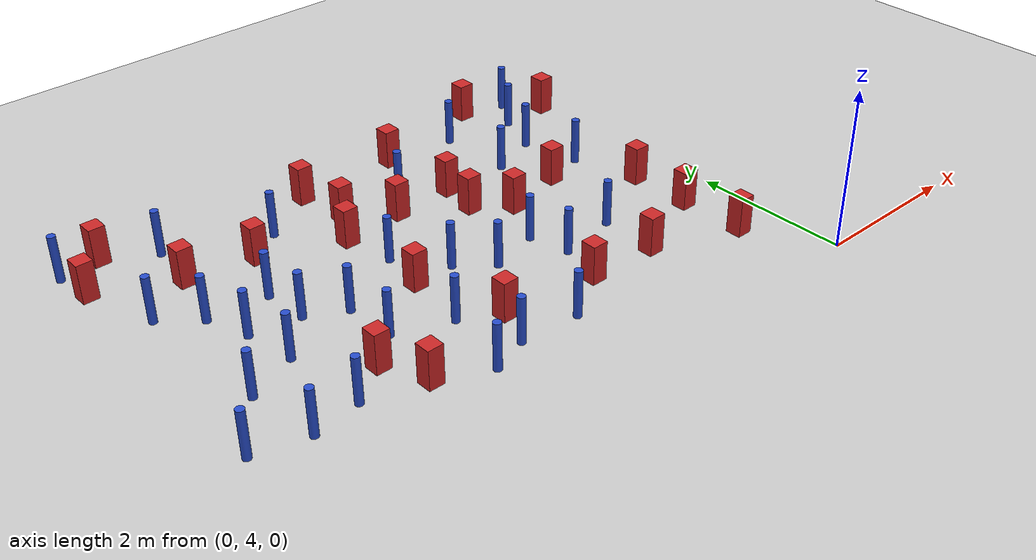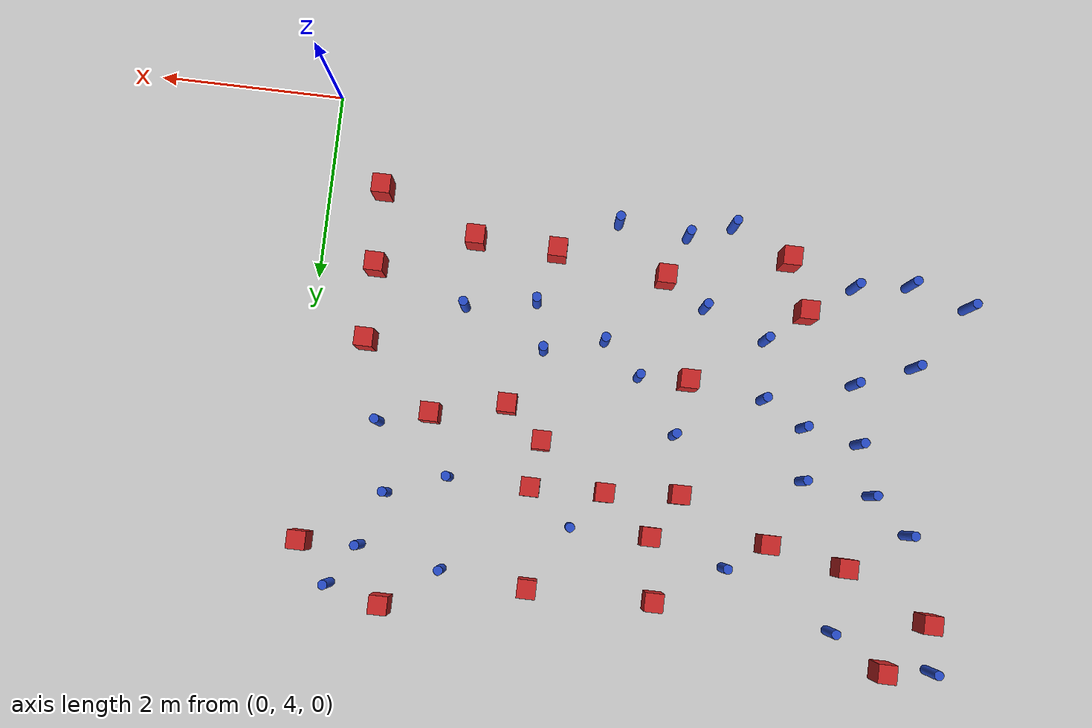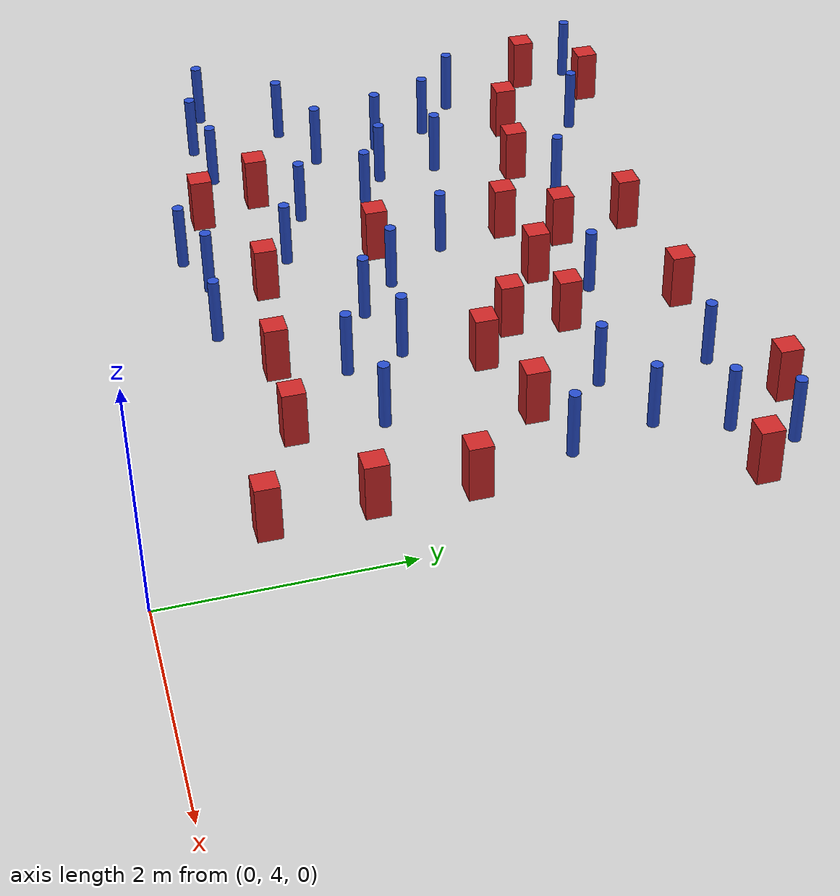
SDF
<sdf version="1.6">
 <world name="default">
  <model name="ground_plane">
   <static>1</static>
   <link name="link">
    <collision name="collision">
     <geometry><plane><normal>0 0 1</normal><size>100 100</size></plane></geometry>
     <surface><friction><ode><mu>100</mu><mu2>50</mu2></ode></friction></surface>
    </collision>
    <visual name="visual">
     <cast_shadows>0</cast_shadows>
     <geometry><plane><normal>0 0 1</normal><size>100 100</size></plane></geometry>
     <material>
      <ambient>1.0 1.0 1.0 1.0</ambient>
      <diffuse>0.8 0.8 0.8 1.0</diffuse>
      <specular>0.01 0.01 0.01 1.000000</specular>
     </material>
    </visual>
   </link>
  </model>
  <model name="square_post_obstacle8">
   <static>true</static>
   <pose>-5.11551019395 8.31496779472 -6.11067671241e-07 -5.50515727128e-06 -8.79689657224e-07 2.37013304536e-05</pose>
   <link name="link">
    <pose>0 0 0.25 0 -0 0</pose>
    <inertial>
     <mass>100</mass>
     <inertia>
      <ixx>0.166667</ixx>
      <ixy>0</ixy>
      <ixz>0</ixz>
      <iyy>0.166667</iyy>
      <iyz>0</iyz>
      <izz>0.166667</izz>
     </inertia>
    </inertial>
    <collision name="collision"><geometry><box><size>.2 .2 .5</size></box></geometry></collision>
    <visual name="visual">
     <geometry><box><size>.2 .2 .5</size></box></geometry>
     <material>
      <script><name>Gazebo/Red</name><uri>file://media/materials/scripts/gazebo.material</uri></script>
     </material>
    </visual>
   </link>
  </model>
  <model name="square_post_obstacle12">
   <static>true</static>
   <pose>-4.13528618343 7.90303611068 -6.11067671241e-07 -5.50515727128e-06 -8.79689657224e-07 2.37013304536e-05</pose>
   <link name="link">
    <pose>0 0 0.25 0 -0 0</pose>
    <inertial>
     <mass>100</mass>
     <inertia>
      <ixx>0.166667</ixx>
      <ixy>0</ixy>
      <ixz>0</ixz>
      <iyy>0.166667</iyy>
      <iyz>0</iyz>
      <izz>0.166667</izz>
     </inertia>
    </inertial>
    <collision name="collision"><geometry><box><size>.2 .2 .5</size></box></geometry></collision>
    <visual name="visual">
     <geometry><box><size>.2 .2 .5</size></box></geometry>
     <material>
      <script><name>Gazebo/Red</name><uri>file://media/materials/scripts/gazebo.material</uri></script>
     </material>
    </visual>
   </link>
  </model>
  <model name="pole_obstacle9">
   <static>true</static>
   <pose>-1.71116618403 8.97383603554 -9.47619616065e-06 5.49618799737e-07 2.36310414046e-07 -1.55090534809e-07</pose>
   <link name="link">
    <pose>0 0 0.3 0 -0 0</pose>
    <inertial>
     <mass>1</mass>
     <inertia><ixx>0.145833</ixx><ixy>0</ixy><ixz>0</ixz><iyy>0.145833</iyy><iyz>0</iyz><izz>0.125</izz></inertia>
    </inertial>
    <collision name="collision">
     <geometry><cylinder><radius>0.05</radius><length>.6</length></cylinder></geometry>
    </collision>
    <visual name="visual">
     <geometry><cylinder><radius>0.05</radius><length>.6</length></cylinder></geometry>
     <material>
      <script><name>Gazebo/Blue</name><uri>file://media/materials/scripts/gazebo.material</uri></script>
     </material>
    </visual>
   </link>
  </model>
  <model name="square_post_obstacle18">
   <static>true</static>
   <pose>-1.40789826771 7.34140972793 -6.11067671241e-07 -5.50515727128e-06 -8.79689657224e-07 2.37013304536e-05</pose>
   <link name="link">
    <pose>0 0 0.25 0 -0 0</pose>
    <inertial>
     <mass>100</mass>
     <inertia>
      <ixx>0.166667</ixx>
      <ixy>0</ixy>
      <ixz>0</ixz>
      <iyy>0.166667</iyy>
      <iyz>0</iyz>
      <izz>0.166667</izz>
     </inertia>
    </inertial>
    <collision name="collision"><geometry><box><size>.2 .2 .5</size></box></geometry></collision>
    <visual name="visual">
     <geometry><box><size>.2 .2 .5</size></box></geometry>
     <material>
      <script><name>Gazebo/Red</name><uri>file://media/materials/scripts/gazebo.material</uri></script>
     </material>
    </visual>
   </link>
  </model>
  <model name="pole_obstacle10">
   <static>true</static>
   <pose>-6.5843468768 8.05135579155 -9.47619616065e-06 5.49618799737e-07 2.36310414065e-07 -1.55090534796e-07</pose>
   <link name="link">
    <pose>0 0 0.3 0 -0 0</pose>
    <inertial>
     <mass>1</mass>
     <inertia><ixx>0.145833</ixx><ixy>0</ixy><ixz>0</ixz><iyy>0.145833</iyy><iyz>0</iyz><izz>0.125</izz></inertia>
    </inertial>
    <collision name="collision">
     <geometry><cylinder><radius>0.05</radius><length>.6</length></cylinder></geometry>
    </collision>
    <visual name="visual">
     <geometry><cylinder><radius>0.05</radius><length>.6</length></cylinder></geometry>
     <material>
      <script><name>Gazebo/Blue</name><uri>file://media/materials/scripts/gazebo.material</uri></script>
     </material>
    </visual>
   </link>
  </model>
  <model name="square_post_obstacle20">
   <static>true</static>
   <pose>-2.5529282255 8.00452283296 -6.11067671241e-07 -5.50515727128e-06 -8.79689657224e-07 2.37013304536e-05</pose>
   <link name="link">
    <pose>0 0 0.25 0 -0 0</pose>
    <inertial>
     <mass>100</mass>
     <inertia>
      <ixx>0.166667</ixx>
      <ixy>0</ixy>
      <ixz>0</ixz>
      <iyy>0.166667</iyy>
      <iyz>0</iyz>
      <izz>0.166667</izz>
     </inertia>
    </inertial>
    <collision name="collision"><geometry><box><size>.2 .2 .5</size></box></geometry></collision>
    <visual name="visual">
     <geometry><box><size>.2 .2 .5</size></box></geometry>
     <material>
      <script><name>Gazebo/Red</name><uri>file://media/materials/scripts/gazebo.material</uri></script>
     </material>
    </visual>
   </link>
  </model>
  <model name="pole_obstacle15">
   <static>true</static>
   <pose>-6.35995392079 5.38693836315 -9.47619616065e-06 5.49618799737e-07 2.36310414037e-07 -1.55090534814e-07</pose>
   <link name="link">
    <pose>0 0 0.3 0 -0 0</pose>
    <inertial>
     <mass>1</mass>
     <inertia><ixx>0.145833</ixx><ixy>0</ixy><ixz>0</ixz><iyy>0.145833</iyy><iyz>0</iyz><izz>0.125</izz></inertia>
    </inertial>
    <collision name="collision">
     <geometry><cylinder><radius>0.05</radius><length>.6</length></cylinder></geometry>
    </collision>
    <visual name="visual">
     <geometry><cylinder><radius>0.05</radius><length>.6</length></cylinder></geometry>
     <material>
      <script><name>Gazebo/Blue</name><uri>file://media/materials/scripts/gazebo.material</uri></script>
     </material>
    </visual>
   </link>
  </model>
  <model name="pole_obstacle29">
   <static>true</static>
   <pose>-5.86189754242 6.52218345298 -9.47619616065e-06 5.49618799737e-07 2.36310414037e-07 -1.55090534814e-07</pose>
   <link name="link">
    <pose>0 0 0.3 0 -0 0</pose>
    <inertial>
     <mass>1</mass>
     <inertia><ixx>0.145833</ixx><ixy>0</ixy><ixz>0</ixz><iyy>0.145833</iyy><iyz>0</iyz><izz>0.125</izz></inertia>
    </inertial>
    <collision name="collision">
     <geometry><cylinder><radius>0.05</radius><length>.6</length></cylinder></geometry>
    </collision>
    <visual name="visual">
     <geometry><cylinder><radius>0.05</radius><length>.6</length></cylinder></geometry>
     <material>
      <script><name>Gazebo/Blue</name><uri>file://media/materials/scripts/gazebo.material</uri></script>
     </material>
    </visual>
   </link>
  </model>
  <model name="pole_obstacle32">
   <static>true</static>
   <pose>-6.95528622753 9.44015601641 -9.47619616065e-06 5.49618799737e-07 2.36310414065e-07 -1.55090534796e-07</pose>
   <link name="link">
    <pose>0 0 0.3 0 -0 0</pose>
    <inertial>
     <mass>1</mass>
     <inertia><ixx>0.145833</ixx><ixy>0</ixy><ixz>0</ixz><iyy>0.145833</iyy><iyz>0</iyz><izz>0.125</izz></inertia>
    </inertial>
    <collision name="collision">
     <geometry><cylinder><radius>0.05</radius><length>.6</length></cylinder></geometry>
    </collision>
    <visual name="visual">
     <geometry><cylinder><radius>0.05</radius><length>.6</length></cylinder></geometry>
     <material>
      <script><name>Gazebo/Blue</name><uri>file://media/materials/scripts/gazebo.material</uri></script>
     </material>
    </visual>
   </link>
  </model>
  <model name="pole_obstacle34">
   <static>true</static>
   <pose>-5.36798932765 7.04122925459 -9.47619616065e-06 5.49618799737e-07 2.36310414037e-07 -1.55090534814e-07</pose>
   <link name="link">
    <pose>0 0 0.3 0 -0 0</pose>
    <inertial>
     <mass>1</mass>
     <inertia><ixx>0.145833</ixx><ixy>0</ixy><ixz>0</ixz><iyy>0.145833</iyy><iyz>0</iyz><izz>0.125</izz></inertia>
    </inertial>
    <collision name="collision">
     <geometry><cylinder><radius>0.05</radius><length>.6</length></cylinder></geometry>
    </collision>
    <visual name="visual">
     <geometry><cylinder><radius>0.05</radius><length>.6</length></cylinder></geometry>
     <material>
      <script><name>Gazebo/Blue</name><uri>file://media/materials/scripts/gazebo.material</uri></script>
     </material>
    </visual>
   </link>
  </model>
  <model name="square_post_obstacle37">
   <static>true</static>
   <pose>-5.27764797823 5.80667210857 -6.11067671241e-07 -5.50515727128e-06 -8.79689657224e-07 2.37013304536e-05</pose>
   <link name="link">
    <pose>0 0 0.25 0 -0 0</pose>
    <inertial>
     <mass>100</mass>
     <inertia>
      <ixx>0.166667</ixx>
      <ixy>0</ixy>
      <ixz>0</ixz>
      <iyy>0.166667</iyy>
      <iyz>0</iyz>
      <izz>0.166667</izz>
     </inertia>
    </inertial>
    <collision name="collision"><geometry><box><size>.2 .2 .5</size></box></geometry></collision>
    <visual name="visual">
     <geometry><box><size>.2 .2 .5</size></box></geometry>
     <material>
      <script><name>Gazebo/Red</name><uri>file://media/materials/scripts/gazebo.material</uri></script>
     </material>
    </visual>
   </link>
  </model>
  <model name="pole_obstacle46">
   <static>true</static>
   <pose>-0.54264829276 9.25589649956 -9.47619616065e-06 5.49618799737e-07 2.36310414028e-07 -1.55090534819e-07</pose>
   <link name="link">
    <pose>0 0 0.3 0 -0 0</pose>
    <inertial>
     <mass>1</mass>
     <inertia><ixx>0.145833</ixx><ixy>0</ixy><ixz>0</ixz><iyy>0.145833</iyy><iyz>0</iyz><izz>0.125</izz></inertia>
    </inertial>
    <collision name="collision">
     <geometry><cylinder><radius>0.05</radius><length>.6</length></cylinder></geometry>
    </collision>
    <visual name="visual">
     <geometry><cylinder><radius>0.05</radius><length>.6</length></cylinder></geometry>
     <material>
      <script><name>Gazebo/Blue</name><uri>file://media/materials/scripts/gazebo.material</uri></script>
     </material>
    </visual>
   </link>
  </model>
  <model name="pole_obstacle47">
   <static>true</static>
   <pose>-6.99931477617 5.55823796753 -9.47619616065e-06 5.49618799737e-07 2.36310414037e-07 -1.55090534814e-07</pose>
   <link name="link">
    <pose>0 0 0.3 0 -0 0</pose>
    <inertial>
     <mass>1</mass>
     <inertia><ixx>0.145833</ixx><ixy>0</ixy><ixz>0</ixz><iyy>0.145833</iyy><iyz>0</iyz><izz>0.125</izz></inertia>
    </inertial>
    <collision name="collision">
     <geometry><cylinder><radius>0.05</radius><length>.6</length></cylinder></geometry>
    </collision>
    <visual name="visual">
     <geometry><cylinder><radius>0.05</radius><length>.6</length></cylinder></geometry>
     <material>
      <script><name>Gazebo/Blue</name><uri>file://media/materials/scripts/gazebo.material</uri></script>
     </material>
    </visual>
   </link>
  </model>
  <model name="pole_obstacle48">
   <static>true</static>
   <pose>-6.48307489942 6.2671769271 -9.47619616065e-06 5.49618799737e-07 2.36310414037e-07 -1.55090534814e-07</pose>
   <link name="link">
    <pose>0 0 0.3 0 -0 0</pose>
    <inertial>
     <mass>1</mass>
     <inertia><ixx>0.145833</ixx><ixy>0</ixy><ixz>0</ixz><iyy>0.145833</iyy><iyz>0</iyz><izz>0.125</izz></inertia>
    </inertial>
    <collision name="collision">
     <geometry><cylinder><radius>0.05</radius><length>.6</length></cylinder></geometry>
    </collision>
    <visual name="visual">
     <geometry><cylinder><radius>0.05</radius><length>.6</length></cylinder></geometry>
     <material>
      <script><name>Gazebo/Blue</name><uri>file://media/materials/scripts/gazebo.material</uri></script>
     </material>
    </visual>
   </link>
  </model>
  <model name="square_post_obstacle54">
   <static>true</static>
   <pose>-4.10034909954 6.68075565632 -6.11067671241e-07 -5.50515727128e-06 -8.79689657224e-07 2.37013304536e-05</pose>
   <link name="link">
    <pose>0 0 0.25 0 -0 0</pose>
    <inertial>
     <mass>100</mass>
     <inertia>
      <ixx>0.166667</ixx>
      <ixy>0</ixy>
      <ixz>0</ixz>
      <iyy>0.166667</iyy>
      <iyz>0</iyz>
      <izz>0.166667</izz>
     </inertia>
    </inertial>
    <collision name="collision"><geometry><box><size>.2 .2 .5</size></box></geometry></collision>
    <visual name="visual">
     <geometry><box><size>.2 .2 .5</size></box></geometry>
     <material>
      <script><name>Gazebo/Red</name><uri>file://media/materials/scripts/gazebo.material</uri></script>
     </material>
    </visual>
   </link>
  </model>
  <model name="square_post_obstacle55">
   <static>true</static>
   <pose>-2.64057379838 9.06481853643 -6.11067671241e-07 -5.50515727128e-06 -8.79689657224e-07 2.37013304536e-05</pose>
   <link name="link">
    <pose>0 0 0.25 0 -0 0</pose>
    <inertial>
     <mass>100</mass>
     <inertia>
      <ixx>0.166667</ixx>
      <ixy>0</ixy>
      <ixz>0</ixz>
      <iyy>0.166667</iyy>
      <iyz>0</iyz>
      <izz>0.166667</izz>
     </inertia>
    </inertial>
    <collision name="collision"><geometry><box><size>.2 .2 .5</size></box></geometry></collision>
    <visual name="visual">
     <geometry><box><size>.2 .2 .5</size></box></geometry>
     <material>
      <script><name>Gazebo/Red</name><uri>file://media/materials/scripts/gazebo.material</uri></script>
     </material>
    </visual>
   </link>
  </model>
  <model name="pole_obstacle55">
   <static>true</static>
   <pose>-6.15522163047 7.67903261625 -9.47619616065e-06 5.49618799737e-07 2.36310414037e-07 -1.55090534814e-07</pose>
   <link name="link">
    <pose>0 0 0.3 0 -0 0</pose>
    <inertial>
     <mass>1</mass>
     <inertia><ixx>0.145833</ixx><ixy>0</ixy><ixz>0</ixz><iyy>0.145833</iyy><iyz>0</iyz><izz>0.125</izz></inertia>
    </inertial>
    <collision name="collision">
     <geometry><cylinder><radius>0.05</radius><length>.6</length></cylinder></geometry>
    </collision>
    <visual name="visual">
     <geometry><cylinder><radius>0.05</radius><length>.6</length></cylinder></geometry>
     <material>
      <script><name>Gazebo/Blue</name><uri>file://media/materials/scripts/gazebo.material</uri></script>
     </material>
    </visual>
   </link>
  </model>
  <model name="square_post_obstacle69">
   <static>true</static>
   <pose>-0.602978565739 4.98608946399 -6.11067671241e-07 -5.50515727128e-06 -8.79689657224e-07 2.37013304536e-05</pose>
   <link name="link">
    <pose>0 0 0.25 0 -0 0</pose>
    <inertial>
     <mass>100</mass>
     <inertia>
      <ixx>0.166667</ixx>
      <ixy>0</ixy>
      <ixz>0</ixz>
      <iyy>0.166667</iyy>
      <iyz>0</iyz>
      <izz>0.166667</izz>
     </inertia>
    </inertial>
    <collision name="collision"><geometry><box><size>.2 .2 .5</size></box></geometry></collision>
    <visual name="visual">
     <geometry><box><size>.2 .2 .5</size></box></geometry>
     <material>
      <script><name>Gazebo/Red</name><uri>file://media/materials/scripts/gazebo.material</uri></script>
     </material>
    </visual>
   </link>
  </model>
  <model name="square_post_obstacle75">
   <static>true</static>
   <pose>-3.34062515276 7.97286387433 -6.11067671241e-07 -5.50515727128e-06 -8.79689657224e-07 2.37013304536e-05</pose>
   <link name="link">
    <pose>0 0 0.25 0 -0 0</pose>
    <inertial>
     <mass>100</mass>
     <inertia>
      <ixx>0.166667</ixx>
      <ixy>0</ixy>
      <ixz>0</ixz>
      <iyy>0.166667</iyy>
      <iyz>0</iyz>
      <izz>0.166667</izz>
     </inertia>
    </inertial>
    <collision name="collision"><geometry><box><size>.2 .2 .5</size></box></geometry></collision>
    <visual name="visual">
     <geometry><box><size>.2 .2 .5</size></box></geometry>
     <material>
      <script><name>Gazebo/Red</name><uri>file://media/materials/scripts/gazebo.material</uri></script>
     </material>
    </visual>
   </link>
  </model>
  <model name="pole_obstacle72">
   <static>true</static>
   <pose>-3.17795187801 5.06145435781 -9.47619616065e-06 5.49618799738e-07 2.3631041406e-07 -1.55090534801e-07</pose>
   <link name="link">
    <pose>0 0 0.3 0 -0 0</pose>
    <inertial>
     <mass>1</mass>
     <inertia><ixx>0.145833</ixx><ixy>0</ixy><ixz>0</ixz><iyy>0.145833</iyy><iyz>0</iyz><izz>0.125</izz></inertia>
    </inertial>
    <collision name="collision">
     <geometry><cylinder><radius>0.05</radius><length>.6</length></cylinder></geometry>
    </collision>
    <visual name="visual">
     <geometry><cylinder><radius>0.05</radius><length>.6</length></cylinder></geometry>
     <material>
      <script><name>Gazebo/Blue</name><uri>file://media/materials/scripts/gazebo.material</uri></script>
     </material>
    </visual>
   </link>
  </model>
  <model name="pole_obstacle75">
   <static>true</static>
   <pose>-5.8657363759 9.14886178907 -9.47619616065e-06 5.49618799737e-07 2.36310414065e-07 -1.55090534796e-07</pose>
   <link name="link">
    <pose>0 0 0.3 0 -0 0</pose>
    <inertial>
     <mass>1</mass>
     <inertia><ixx>0.145833</ixx><ixy>0</ixy><ixz>0</ixz><iyy>0.145833</iyy><iyz>0</iyz><izz>0.125</izz></inertia>
    </inertial>
    <collision name="collision">
     <geometry><cylinder><radius>0.05</radius><length>.6</length></cylinder></geometry>
    </collision>
    <visual name="visual">
     <geometry><cylinder><radius>0.05</radius><length>.6</length></cylinder></geometry>
     <material>
      <script><name>Gazebo/Blue</name><uri>file://media/materials/scripts/gazebo.material</uri></script>
     </material>
    </visual>
   </link>
  </model>
  <model name="square_post_obstacle79">
   <static>true</static>
   <pose>-5.04181790255 5.2524837354 -6.11067671241e-07 -5.50515727128e-06 -8.79689657224e-07 2.37013304536e-05</pose>
   <link name="link">
    <pose>0 0 0.25 0 -0 0</pose>
    <inertial>
     <mass>100</mass>
     <inertia>
      <ixx>0.166667</ixx>
      <ixy>0</ixy>
      <ixz>0</ixz>
      <iyy>0.166667</iyy>
      <iyz>0</iyz>
      <izz>0.166667</izz>
     </inertia>
    </inertial>
    <collision name="collision"><geometry><box><size>.2 .2 .5</size></box></geometry></collision>
    <visual name="visual">
     <geometry><box><size>.2 .2 .5</size></box></geometry>
     <material>
      <script><name>Gazebo/Red</name><uri>file://media/materials/scripts/gazebo.material</uri></script>
     </material>
    </visual>
   </link>
  </model>
  <model name="pole_obstacle82">
   <static>true</static>
   <pose>-3.93377598238 5.1259964007 -9.47619616065e-06 5.49618799738e-07 2.3631041406e-07 -1.55090534801e-07</pose>
   <link name="link">
    <pose>0 0 0.3 0 -0 0</pose>
    <inertial>
     <mass>1</mass>
     <inertia><ixx>0.145833</ixx><ixy>0</ixy><ixz>0</ixz><iyy>0.145833</iyy><iyz>0</iyz><izz>0.125</izz></inertia>
    </inertial>
    <collision name="collision">
     <geometry><cylinder><radius>0.05</radius><length>.6</length></cylinder></geometry>
    </collision>
    <visual name="visual">
     <geometry><cylinder><radius>0.05</radius><length>.6</length></cylinder></geometry>
     <material>
      <script><name>Gazebo/Blue</name><uri>file://media/materials/scripts/gazebo.material</uri></script>
     </material>
    </visual>
   </link>
  </model>
  <model name="pole_obstacle86">
   <static>true</static>
   <pose>-0.818134327153 8.81550036852 -9.47619616065e-06 5.49618799737e-07 2.36310414038e-07 -1.55090534813e-07</pose>
   <link name="link">
    <pose>0 0 0.3 0 -0 0</pose>
    <inertial>
     <mass>1</mass>
     <inertia><ixx>0.145833</ixx><ixy>0</ixy><ixz>0</ixz><iyy>0.145833</iyy><iyz>0</iyz><izz>0.125</izz></inertia>
    </inertial>
    <collision name="collision">
     <geometry><cylinder><radius>0.05</radius><length>.6</length></cylinder></geometry>
    </collision>
    <visual name="visual">
     <geometry><cylinder><radius>0.05</radius><length>.6</length></cylinder></geometry>
     <material>
      <script><name>Gazebo/Blue</name><uri>file://media/materials/scripts/gazebo.material</uri></script>
     </material>
    </visual>
   </link>
  </model>
  <model name="pole_obstacle94">
   <static>true</static>
   <pose>-0.857257706681 7.48844611932 -9.47619616065e-06 5.49618799737e-07 2.36310414065e-07 -1.55090534796e-07</pose>
   <link name="link">
    <pose>0 0 0.3 0 -0 0</pose>
    <inertial>
     <mass>1</mass>
     <inertia><ixx>0.145833</ixx><ixy>0</ixy><ixz>0</ixz><iyy>0.145833</iyy><iyz>0</iyz><izz>0.125</izz></inertia>
    </inertial>
    <collision name="collision">
     <geometry><cylinder><radius>0.05</radius><length>.6</length></cylinder></geometry>
    </collision>
    <visual name="visual">
     <geometry><cylinder><radius>0.05</radius><length>.6</length></cylinder></geometry>
     <material>
      <script><name>Gazebo/Blue</name><uri>file://media/materials/scripts/gazebo.material</uri></script>
     </material>
    </visual>
   </link>
  </model>
  <model name="square_post_obstacle87">
   <static>true</static>
   <pose>-5.95016144364 8.46774701999 -6.11067671241e-07 -5.50515727128e-06 -8.79689657224e-07 2.37013304536e-05</pose>
   <link name="link">
    <pose>0 0 0.25 0 -0 0</pose>
    <inertial>
     <mass>100</mass>
     <inertia>
      <ixx>0.166667</ixx>
      <ixy>0</ixy>
      <ixz>0</ixz>
      <iyy>0.166667</iyy>
      <iyz>0</iyz>
      <izz>0.166667</izz>
     </inertia>
    </inertial>
    <collision name="collision"><geometry><box><size>.2 .2 .5</size></box></geometry></collision>
    <visual name="visual">
     <geometry><box><size>.2 .2 .5</size></box></geometry>
     <material>
      <script><name>Gazebo/Red</name><uri>file://media/materials/scripts/gazebo.material</uri></script>
     </material>
    </visual>
   </link>
  </model>
  <model name="pole_obstacle98">
   <static>true</static>
   <pose>-4.19526706081 5.87867322998 -9.47619616065e-06 5.49618799737e-07 2.36310414037e-07 -1.55090534814e-07</pose>
   <link name="link">
    <pose>0 0 0.3 0 -0 0</pose>
    <inertial>
     <mass>1</mass>
     <inertia><ixx>0.145833</ixx><ixy>0</ixy><ixz>0</ixz><iyy>0.145833</iyy><iyz>0</iyz><izz>0.125</izz></inertia>
    </inertial>
    <collision name="collision">
     <geometry><cylinder><radius>0.05</radius><length>.6</length></cylinder></geometry>
    </collision>
    <visual name="visual">
     <geometry><cylinder><radius>0.05</radius><length>.6</length></cylinder></geometry>
     <material>
      <script><name>Gazebo/Blue</name><uri>file://media/materials/scripts/gazebo.material</uri></script>
     </material>
    </visual>
   </link>
  </model>
  <model name="pole_obstacle105">
   <static>true</static>
   <pose>-3.16689377688 6.35650195843 -9.47619616065e-06 5.49618799738e-07 2.3631041406e-07 -1.55090534801e-07</pose>
   <link name="link">
    <pose>0 0 0.3 0 -0 0</pose>
    <inertial>
     <mass>1</mass>
     <inertia><ixx>0.145833</ixx><ixy>0</ixy><ixz>0</ixz><iyy>0.145833</iyy><iyz>0</iyz><izz>0.125</izz></inertia>
    </inertial>
    <collision name="collision">
     <geometry><cylinder><radius>0.05</radius><length>.6</length></cylinder></geometry>
    </collision>
    <visual name="visual">
     <geometry><cylinder><radius>0.05</radius><length>.6</length></cylinder></geometry>
     <material>
      <script><name>Gazebo/Blue</name><uri>file://media/materials/scripts/gazebo.material</uri></script>
     </material>
    </visual>
   </link>
  </model>
  <model name="square_post_obstacle97">
   <static>true</static>
   <pose>-6.88249929749 8.94413513771 -6.11067671241e-07 -5.50515727128e-06 -8.79689657224e-07 2.37013304536e-05</pose>
   <link name="link">
    <pose>0 0 0.25 0 -0 0</pose>
    <inertial>
     <mass>100</mass>
     <inertia>
      <ixx>0.166667</ixx>
      <ixy>0</ixy>
      <ixz>0</ixz>
      <iyy>0.166667</iyy>
      <iyz>0</iyz>
      <izz>0.166667</izz>
     </inertia>
    </inertial>
    <collision name="collision"><geometry><box><size>.2 .2 .5</size></box></geometry></collision>
    <visual name="visual">
     <geometry><box><size>.2 .2 .5</size></box></geometry>
     <material>
      <script><name>Gazebo/Red</name><uri>file://media/materials/scripts/gazebo.material</uri></script>
     </material>
    </visual>
   </link>
  </model>
  <model name="pole_obstacle112">
   <static>true</static>
   <pose>-2.39510728031 6.02190937396 -9.47619616065e-06 5.49618799738e-07 2.3631041406e-07 -1.55090534801e-07</pose>
   <link name="link">
    <pose>0 0 0.3 0 -0 0</pose>
    <inertial>
     <mass>1</mass>
     <inertia><ixx>0.145833</ixx><ixy>0</ixy><ixz>0</ixz><iyy>0.145833</iyy><iyz>0</iyz><izz>0.125</izz></inertia>
    </inertial>
    <collision name="collision">
     <geometry><cylinder><radius>0.05</radius><length>.6</length></cylinder></geometry>
    </collision>
    <visual name="visual">
     <geometry><cylinder><radius>0.05</radius><length>.6</length></cylinder></geometry>
     <material>
      <script><name>Gazebo/Blue</name><uri>file://media/materials/scripts/gazebo.material</uri></script>
     </material>
    </visual>
   </link>
  </model>
  <model name="pole_obstacle115">
   <static>true</static>
   <pose>-5.41661436758 7.60521605256 -9.47619616065e-06 5.49618799737e-07 2.36310414037e-07 -1.55090534814e-07</pose>
   <link name="link">
    <pose>0 0 0.3 0 -0 0</pose>
    <inertial>
     <mass>1</mass>
     <inertia><ixx>0.145833</ixx><ixy>0</ixy><ixz>0</ixz><iyy>0.145833</iyy><iyz>0</iyz><izz>0.125</izz></inertia>
    </inertial>
    <collision name="collision">
     <geometry><cylinder><radius>0.05</radius><length>.6</length></cylinder></geometry>
    </collision>
    <visual name="visual">
     <geometry><cylinder><radius>0.05</radius><length>.6</length></cylinder></geometry>
     <material>
      <script><name>Gazebo/Blue</name><uri>file://media/materials/scripts/gazebo.material</uri></script>
     </material>
    </visual>
   </link>
  </model>
  <model name="square_post_obstacle102">
   <static>true</static>
   <pose>-3.97528318997 9.04919374917 -6.11067671241e-07 -5.50515727128e-06 -8.79689657224e-07 2.37013304536e-05</pose>
   <link name="link">
    <pose>0 0 0.25 0 -0 0</pose>
    <inertial>
     <mass>100</mass>
     <inertia>
      <ixx>0.166667</ixx>
      <ixy>0</ixy>
      <ixz>0</ixz>
      <iyy>0.166667</iyy>
      <iyz>0</iyz>
      <izz>0.166667</izz>
     </inertia>
    </inertial>
    <collision name="collision"><geometry><box><size>.2 .2 .5</size></box></geometry></collision>
    <visual name="visual">
     <geometry><box><size>.2 .2 .5</size></box></geometry>
     <material>
      <script><name>Gazebo/Red</name><uri>file://media/materials/scripts/gazebo.material</uri></script>
     </material>
    </visual>
   </link>
  </model>
  <model name="pole_obstacle116">
   <static>true</static>
   <pose>-4.01145472196 7.27576875568 -9.47619616065e-06 5.49618799737e-07 2.36310414031e-07 -1.55090534817e-07</pose>
   <link name="link">
    <pose>0 0 0.3 0 -0 0</pose>
    <inertial>
     <mass>1</mass>
     <inertia><ixx>0.145833</ixx><ixy>0</ixy><ixz>0</ixz><iyy>0.145833</iyy><iyz>0</iyz><izz>0.125</izz></inertia>
    </inertial>
    <collision name="collision">
     <geometry><cylinder><radius>0.05</radius><length>.6</length></cylinder></geometry>
    </collision>
    <visual name="visual">
     <geometry><cylinder><radius>0.05</radius><length>.6</length></cylinder></geometry>
     <material>
      <script><name>Gazebo/Blue</name><uri>file://media/materials/scripts/gazebo.material</uri></script>
     </material>
    </visual>
   </link>
  </model>
  <model name="square_post_obstacle108">
   <static>true</static>
   <pose>-2.61542475791 7.50243725463 -6.11067671241e-07 -5.50515727128e-06 -8.79689657224e-07 2.37013304536e-05</pose>
   <link name="link">
    <pose>0 0 0.25 0 -0 0</pose>
    <inertial>
     <mass>100</mass>
     <inertia>
      <ixx>0.166667</ixx>
      <ixy>0</ixy>
      <ixz>0</ixz>
      <iyy>0.166667</iyy>
      <iyz>0</iyz>
      <izz>0.166667</izz>
     </inertia>
    </inertial>
    <collision name="collision"><geometry><box><size>.2 .2 .5</size></box></geometry></collision>
    <visual name="visual">
     <geometry><box><size>.2 .2 .5</size></box></geometry>
     <material>
      <script><name>Gazebo/Red</name><uri>file://media/materials/scripts/gazebo.material</uri></script>
     </material>
    </visual>
   </link>
  </model>
  <model name="pole_obstacle130">
   <static>true</static>
   <pose>-4.91313570982 6.78855000914 -9.47619616065e-06 5.49618799737e-07 2.36310414037e-07 -1.55090534814e-07</pose>
   <link name="link">
    <pose>0 0 0.3 0 -0 0</pose>
    <inertial>
     <mass>1</mass>
     <inertia><ixx>0.145833</ixx><ixy>0</ixy><ixz>0</ixz><iyy>0.145833</iyy><iyz>0</iyz><izz>0.125</izz></inertia>
    </inertial>
    <collision name="collision">
     <geometry><cylinder><radius>0.05</radius><length>.6</length></cylinder></geometry>
    </collision>
    <visual name="visual">
     <geometry><cylinder><radius>0.05</radius><length>.6</length></cylinder></geometry>
     <material>
      <script><name>Gazebo/Blue</name><uri>file://media/materials/scripts/gazebo.material</uri></script>
     </material>
    </visual>
   </link>
  </model>
  <model name="pole_obstacle135">
   <static>true</static>
   <pose>-5.9726193209 7.14828094611 -9.47619616065e-06 5.49618799737e-07 2.36310414037e-07 -1.55090534814e-07</pose>
   <link name="link">
    <pose>0 0 0.3 0 -0 0</pose>
    <inertial>
     <mass>1</mass>
     <inertia><ixx>0.145833</ixx><ixy>0</ixy><ixz>0</ixz><iyy>0.145833</iyy><iyz>0</iyz><izz>0.125</izz></inertia>
    </inertial>
    <collision name="collision">
     <geometry><cylinder><radius>0.05</radius><length>.6</length></cylinder></geometry>
    </collision>
    <visual name="visual">
     <geometry><cylinder><radius>0.05</radius><length>.6</length></cylinder></geometry>
     <material>
      <script><name>Gazebo/Blue</name><uri>file://media/materials/scripts/gazebo.material</uri></script>
     </material>
    </visual>
   </link>
  </model>
  <model name="pole_obstacle136">
   <static>true</static>
   <pose>-5.76333517612 5.48046023374 -9.47619616065e-06 5.49618799737e-07 2.36310414037e-07 -1.55090534814e-07</pose>
   <link name="link">
    <pose>0 0 0.3 0 -0 0</pose>
    <inertial>
     <mass>1</mass>
     <inertia><ixx>0.145833</ixx><ixy>0</ixy><ixz>0</ixz><iyy>0.145833</iyy><iyz>0</iyz><izz>0.125</izz></inertia>
    </inertial>
    <collision name="collision">
     <geometry><cylinder><radius>0.05</radius><length>.6</length></cylinder></geometry>
    </collision>
    <visual name="visual">
     <geometry><cylinder><radius>0.05</radius><length>.6</length></cylinder></geometry>
     <material>
      <script><name>Gazebo/Blue</name><uri>file://media/materials/scripts/gazebo.material</uri></script>
     </material>
    </visual>
   </link>
  </model>
  <model name="square_post_obstacle125">
   <static>true</static>
   <pose>-0.624237717082 6.637697913 -6.11067671241e-07 -5.50515727128e-06 -8.79689657224e-07 2.37013304536e-05</pose>
   <link name="link">
    <pose>0 0 0.25 0 -0 0</pose>
    <inertial>
     <mass>100</mass>
     <inertia>
      <ixx>0.166667</ixx>
      <ixy>0</ixy>
      <ixz>0</ixz>
      <iyy>0.166667</iyy>
      <iyz>0</iyz>
      <izz>0.166667</izz>
     </inertia>
    </inertial>
    <collision name="collision"><geometry><box><size>.2 .2 .5</size></box></geometry></collision>
    <visual name="visual">
     <geometry><box><size>.2 .2 .5</size></box></geometry>
     <material>
      <script><name>Gazebo/Red</name><uri>file://media/materials/scripts/gazebo.material</uri></script>
     </material>
    </visual>
   </link>
  </model>
  <model name="square_post_obstacle131">
   <static>true</static>
   <pose>-0.630484452543 5.82496160087 -6.11067671241e-07 -5.50515727128e-06 -8.79689657224e-07 2.37013304536e-05</pose>
   <link name="link">
    <pose>0 0 0.25 0 -0 0</pose>
    <inertial>
     <mass>100</mass>
     <inertia>
      <ixx>0.166667</ixx>
      <ixy>0</ixy>
      <ixz>0</ixz>
      <iyy>0.166667</iyy>
      <iyz>0</iyz>
      <izz>0.166667</izz>
     </inertia>
    </inertial>
    <collision name="collision"><geometry><box><size>.2 .2 .5</size></box></geometry></collision>
    <visual name="visual">
     <geometry><box><size>.2 .2 .5</size></box></geometry>
     <material>
      <script><name>Gazebo/Red</name><uri>file://media/materials/scripts/gazebo.material</uri></script>
     </material>
    </visual>
   </link>
  </model>
  <model name="pole_obstacle144">
   <static>true</static>
   <pose>-3.56914061213 6.69951376574 -9.47619616065e-06 5.49618799738e-07 2.3631041406e-07 -1.55090534801e-07</pose>
   <link name="link">
    <pose>0 0 0.3 0 -0 0</pose>
    <inertial>
     <mass>1</mass>
     <inertia><ixx>0.145833</ixx><ixy>0</ixy><ixz>0</ixz><iyy>0.145833</iyy><iyz>0</iyz><izz>0.125</izz></inertia>
    </inertial>
    <collision name="collision">
     <geometry><cylinder><radius>0.05</radius><length>.6</length></cylinder></geometry>
    </collision>
    <visual name="visual">
     <geometry><cylinder><radius>0.05</radius><length>.6</length></cylinder></geometry>
     <material>
      <script><name>Gazebo/Blue</name><uri>file://media/materials/scripts/gazebo.material</uri></script>
     </material>
    </visual>
   </link>
  </model>
  <model name="pole_obstacle146">
   <static>true</static>
   <pose>-2.52336077986 6.52856107982 -9.47619616065e-06 5.49618799738e-07 2.3631041406e-07 -1.55090534801e-07</pose>
   <link name="link">
    <pose>0 0 0.3 0 -0 0</pose>
    <inertial>
     <mass>1</mass>
     <inertia><ixx>0.145833</ixx><ixy>0</ixy><ixz>0</ixz><iyy>0.145833</iyy><iyz>0</iyz><izz>0.125</izz></inertia>
    </inertial>
    <collision name="collision">
     <geometry><cylinder><radius>0.05</radius><length>.6</length></cylinder></geometry>
    </collision>
    <visual name="visual">
     <geometry><cylinder><radius>0.05</radius><length>.6</length></cylinder></geometry>
     <material>
      <script><name>Gazebo/Blue</name><uri>file://media/materials/scripts/gazebo.material</uri></script>
     </material>
    </visual>
   </link>
  </model>
  <model name="pole_obstacle148">
   <static>true</static>
   <pose>-1.63153890118 6.15321344618 -9.47619616065e-06 5.49618799737e-07 2.36310414061e-07 -1.550905348e-07</pose>
   <link name="link">
    <pose>0 0 0.3 0 -0 0</pose>
    <inertial>
     <mass>1</mass>
     <inertia><ixx>0.145833</ixx><ixy>0</ixy><ixz>0</ixz><iyy>0.145833</iyy><iyz>0</iyz><izz>0.125</izz></inertia>
    </inertial>
    <collision name="collision">
     <geometry><cylinder><radius>0.05</radius><length>.6</length></cylinder></geometry>
    </collision>
    <visual name="visual">
     <geometry><cylinder><radius>0.05</radius><length>.6</length></cylinder></geometry>
     <material>
      <script><name>Gazebo/Blue</name><uri>file://media/materials/scripts/gazebo.material</uri></script>
     </material>
    </visual>
   </link>
  </model>
  <model name="square_post_obstacle140">
   <static>true</static>
   <pose>-3.74025653976 5.59692907484 -6.11067671241e-07 -5.50515727128e-06 -8.79689657224e-07 2.37013304536e-05</pose>
   <link name="link">
    <pose>0 0 0.25 0 -0 0</pose>
    <inertial>
     <mass>100</mass>
     <inertia>
      <ixx>0.166667</ixx>
      <ixy>0</ixy>
      <ixz>0</ixz>
      <iyy>0.166667</iyy>
      <iyz>0</iyz>
      <izz>0.166667</izz>
     </inertia>
    </inertial>
    <collision name="collision"><geometry><box><size>.2 .2 .5</size></box></geometry></collision>
    <visual name="visual">
     <geometry><box><size>.2 .2 .5</size></box></geometry>
     <material>
      <script><name>Gazebo/Red</name><uri>file://media/materials/scripts/gazebo.material</uri></script>
     </material>
    </visual>
   </link>
  </model>
  <model name="square_post_obstacle149">
   <static>true</static>
   <pose>-2.20794831287 7.15361870685 -6.11067671241e-07 -5.50515727128e-06 -8.79689657224e-07 2.37013304536e-05</pose>
   <link name="link">
    <pose>0 0 0.25 0 -0 0</pose>
    <inertial>
     <mass>100</mass>
     <inertia>
      <ixx>0.166667</ixx>
      <ixy>0</ixy>
      <ixz>0</ixz>
      <iyy>0.166667</iyy>
      <iyz>0</iyz>
      <izz>0.166667</izz>
     </inertia>
    </inertial>
    <collision name="collision"><geometry><box><size>.2 .2 .5</size></box></geometry></collision>
    <visual name="visual">
     <geometry><box><size>.2 .2 .5</size></box></geometry>
     <material>
      <script><name>Gazebo/Red</name><uri>file://media/materials/scripts/gazebo.material</uri></script>
     </material>
    </visual>
   </link>
  </model>
  <model name="pole_obstacle164">
   <static>true</static>
   <pose>-4.40892603054 4.9616883122 -9.47619616065e-06 5.49618799737e-07 2.36310414037e-07 -1.55090534814e-07</pose>
   <link name="link">
    <pose>0 0 0.3 0 -0 0</pose>
    <inertial>
     <mass>1</mass>
     <inertia><ixx>0.145833</ixx><ixy>0</ixy><ixz>0</ixz><iyy>0.145833</iyy><iyz>0</iyz><izz>0.125</izz></inertia>
    </inertial>
    <collision name="collision">
     <geometry><cylinder><radius>0.05</radius><length>.6</length></cylinder></geometry>
    </collision>
    <visual name="visual">
     <geometry><cylinder><radius>0.05</radius><length>.6</length></cylinder></geometry>
     <material>
      <script><name>Gazebo/Blue</name><uri>file://media/materials/scripts/gazebo.material</uri></script>
     </material>
    </visual>
   </link>
  </model>
  <model name="square_post_obstacle160">
   <static>true</static>
   <pose>-2.55297854618 5.44774292817 -6.11067671241e-07 -5.50515727128e-06 -8.79689657224e-07 2.37013304536e-05</pose>
   <link name="link">
    <pose>0 0 0.25 0 -0 0</pose>
    <inertial>
     <mass>100</mass>
     <inertia>
      <ixx>0.166667</ixx>
      <ixy>0</ixy>
      <ixz>0</ixz>
      <iyy>0.166667</iyy>
      <iyz>0</iyz>
      <izz>0.166667</izz>
     </inertia>
    </inertial>
    <collision name="collision"><geometry><box><size>.2 .2 .5</size></box></geometry></collision>
    <visual name="visual">
     <geometry><box><size>.2 .2 .5</size></box></geometry>
     <material>
      <script><name>Gazebo/Red</name><uri>file://media/materials/scripts/gazebo.material</uri></script>
     </material>
    </visual>
   </link>
  </model>
  <model name="pole_obstacle172">
   <static>true</static>
   <pose>-4.87332572472 6.15469326489 -9.47619616065e-06 5.49618799737e-07 2.36310414037e-07 -1.55090534814e-07</pose>
   <link name="link">
    <pose>0 0 0.3 0 -0 0</pose>
    <inertial>
     <mass>1</mass>
     <inertia><ixx>0.145833</ixx><ixy>0</ixy><ixz>0</ixz><iyy>0.145833</iyy><iyz>0</iyz><izz>0.125</izz></inertia>
    </inertial>
    <collision name="collision">
     <geometry><cylinder><radius>0.05</radius><length>.6</length></cylinder></geometry>
    </collision>
    <visual name="visual">
     <geometry><cylinder><radius>0.05</radius><length>.6</length></cylinder></geometry>
     <material>
      <script><name>Gazebo/Blue</name><uri>file://media/materials/scripts/gazebo.material</uri></script>
     </material>
    </visual>
   </link>
  </model>
  <model name="square_post_obstacle165">
   <static>true</static>
   <pose>-3.86959009441 8.37731338188 -6.11067671241e-07 -5.50515727128e-06 -8.79689657224e-07 2.37013304536e-05</pose>
   <link name="link">
    <pose>0 0 0.25 0 -0 0</pose>
    <inertial>
     <mass>100</mass>
     <inertia>
      <ixx>0.166667</ixx>
      <ixy>0</ixy>
      <ixz>0</ixz>
      <iyy>0.166667</iyy>
      <iyz>0</iyz>
      <izz>0.166667</izz>
     </inertia>
    </inertial>
    <collision name="collision"><geometry><box><size>.2 .2 .5</size></box></geometry></collision>
    <visual name="visual">
     <geometry><box><size>.2 .2 .5</size></box></geometry>
     <material>
      <script><name>Gazebo/Red</name><uri>file://media/materials/scripts/gazebo.material</uri></script>
     </material>
    </visual>
   </link>
  </model>
  <model name="pole_obstacle182">
   <static>true</static>
   <pose>-1.03334997881 8.23286912816 -9.47619616065e-06 5.49618799737e-07 2.3631041405e-07 -1.55090534806e-07</pose>
   <link name="link">
    <pose>0 0 0.3 0 -0 0</pose>
    <inertial>
     <mass>1</mass>
     <inertia><ixx>0.145833</ixx><ixy>0</ixy><ixz>0</ixz><iyy>0.145833</iyy><iyz>0</iyz><izz>0.125</izz></inertia>
    </inertial>
    <collision name="collision">
     <geometry><cylinder><radius>0.05</radius><length>.6</length></cylinder></geometry>
    </collision>
    <visual name="visual">
     <geometry><cylinder><radius>0.05</radius><length>.6</length></cylinder></geometry>
     <material>
      <script><name>Gazebo/Blue</name><uri>file://media/materials/scripts/gazebo.material</uri></script>
     </material>
    </visual>
   </link>
  </model>
  <model name="square_post_obstacle176">
   <static>true</static>
   <pose>-1.66380803958 5.41057038943 -6.11067671241e-07 -5.50515727128e-06 -8.79689657224e-07 2.37013304536e-05</pose>
   <link name="link">
    <pose>0 0 0.25 0 -0 0</pose>
    <inertial>
     <mass>100</mass>
     <inertia>
      <ixx>0.166667</ixx>
      <ixy>0</ixy>
      <ixz>0</ixz>
      <iyy>0.166667</iyy>
      <iyz>0</iyz>
      <izz>0.166667</izz>
     </inertia>
    </inertial>
    <collision name="collision"><geometry><box><size>.2 .2 .5</size></box></geometry></collision>
    <visual name="visual">
     <geometry><box><size>.2 .2 .5</size></box></geometry>
     <material>
      <script><name>Gazebo/Red</name><uri>file://media/materials/scripts/gazebo.material</uri></script>
     </material>
    </visual>
   </link>
  </model>
  <model name="square_post_obstacle212">
   <static>true</static>
   <pose>-1.12351337018 9.40682050546 -6.11067671241e-07 -5.50515727128e-06 -8.79689657224e-07 2.37013304536e-05</pose>
   <link name="link">
    <pose>0 0 0.25 0 -0 0</pose>
    <inertial>
     <mass>100</mass>
     <inertia>
      <ixx>0.166667</ixx>
      <ixy>0</ixy>
      <ixz>0</ixz>
      <iyy>0.166667</iyy>
      <iyz>0</iyz>
      <izz>0.166667</izz>
     </inertia>
    </inertial>
    <collision name="collision"><geometry><box><size>.2 .2 .5</size></box></geometry></collision>
    <visual name="visual">
     <geometry><box><size>.2 .2 .5</size></box></geometry>
     <material>
      <script><name>Gazebo/Red</name><uri>file://media/materials/scripts/gazebo.material</uri></script>
     </material>
    </visual>
   </link>
  </model>
  <model name="square_post_obstacle214">
   <static>true</static>
   <pose>-0.192362893139 8.83433509109 -6.11067671241e-07 -5.50515727128e-06 -8.79689657224e-07 2.37013304536e-05</pose>
   <link name="link">
    <pose>0 0 0.25 0 -0 0</pose>
    <inertial>
     <mass>100</mass>
     <inertia>
      <ixx>0.166667</ixx>
      <ixy>0</ixy>
      <ixz>0</ixz>
      <iyy>0.166667</iyy>
      <iyz>0</iyz>
      <izz>0.166667</izz>
     </inertia>
    </inertial>
    <collision name="collision"><geometry><box><size>.2 .2 .5</size></box></geometry></collision>
    <visual name="visual">
     <geometry><box><size>.2 .2 .5</size></box></geometry>
     <material>
      <script><name>Gazebo/Red</name><uri>file://media/materials/scripts/gazebo.material</uri></script>
     </material>
    </visual>
   </link>
  </model>
  <model name="pole_obstacle205">
   <static>true</static>
   <pose>-3.01734865442 8.37542541883 -9.47619616065e-06 5.49618799738e-07 2.36310414059e-07 -1.55090534802e-07</pose>
   <link name="link">
    <pose>0 0 0.3 0 -0 0</pose>
    <inertial>
     <mass>1</mass>
     <inertia><ixx>0.145833</ixx><ixy>0</ixy><ixz>0</ixz><iyy>0.145833</iyy><iyz>0</iyz><izz>0.125</izz></inertia>
    </inertial>
    <collision name="collision">
     <geometry><cylinder><radius>0.05</radius><length>.6</length></cylinder></geometry>
    </collision>
    <visual name="visual">
     <geometry><cylinder><radius>0.05</radius><length>.6</length></cylinder></geometry>
     <material>
      <script><name>Gazebo/Blue</name><uri>file://media/materials/scripts/gazebo.material</uri></script>
     </material>
    </visual>
   </link>
  </model>
  <model name="pole_obstacle208">
   <static>true</static>
   <pose>-1.67067806981 7.99393938228 -9.47619616065e-06 5.49618799737e-07 2.36310414056e-07 -1.55090534802e-07</pose>
   <link name="link">
    <pose>0 0 0.3 0 -0 0</pose>
    <inertial>
     <mass>1</mass>
     <inertia><ixx>0.145833</ixx><ixy>0</ixy><ixz>0</ixz><iyy>0.145833</iyy><iyz>0</iyz><izz>0.125</izz></inertia>
    </inertial>
    <collision name="collision">
     <geometry><cylinder><radius>0.05</radius><length>.6</length></cylinder></geometry>
    </collision>
    <visual name="visual">
     <geometry><cylinder><radius>0.05</radius><length>.6</length></cylinder></geometry>
     <material>
      <script><name>Gazebo/Blue</name><uri>file://media/materials/scripts/gazebo.material</uri></script>
     </material>
    </visual>
   </link>
  </model>
  <model name="pole_obstacle212">
   <static>true</static>
   <pose>-4.68678720353 8.61526741372 -9.47619616065e-06 5.49618799737e-07 2.36310414065e-07 -1.55090534796e-07</pose>
   <link name="link">
    <pose>0 0 0.3 0 -0 0</pose>
    <inertial>
     <mass>1</mass>
     <inertia><ixx>0.145833</ixx><ixy>0</ixy><ixz>0</ixz><iyy>0.145833</iyy><iyz>0</iyz><izz>0.125</izz></inertia>
    </inertial>
    <collision name="collision">
     <geometry><cylinder><radius>0.05</radius><length>.6</length></cylinder></geometry>
    </collision>
    <visual name="visual">
     <geometry><cylinder><radius>0.05</radius><length>.6</length></cylinder></geometry>
     <material>
      <script><name>Gazebo/Blue</name><uri>file://media/materials/scripts/gazebo.material</uri></script>
     </material>
    </visual>
   </link>
  </model>
  <model name="square_post_obstacle223">
   <static>true</static>
   <pose>-6.4556300498 9.49805997688 -6.11067671241e-07 -5.50515727128e-06 -8.79689657224e-07 2.37013304536e-05</pose>
   <link name="link">
    <pose>0 0 0.25 0 -0 0</pose>
    <inertial>
     <mass>100</mass>
     <inertia>
      <ixx>0.166667</ixx>
      <ixy>0</ixy>
      <ixz>0</ixz>
      <iyy>0.166667</iyy>
      <iyz>0</iyz>
      <izz>0.166667</izz>
     </inertia>
    </inertial>
    <collision name="collision"><geometry><box><size>.2 .2 .5</size></box></geometry></collision>
    <visual name="visual">
     <geometry><box><size>.2 .2 .5</size></box></geometry>
     <material>
      <script><name>Gazebo/Red</name><uri>file://media/materials/scripts/gazebo.material</uri></script>
     </material>
    </visual>
   </link>
  </model>
 </world>
</sdf>
